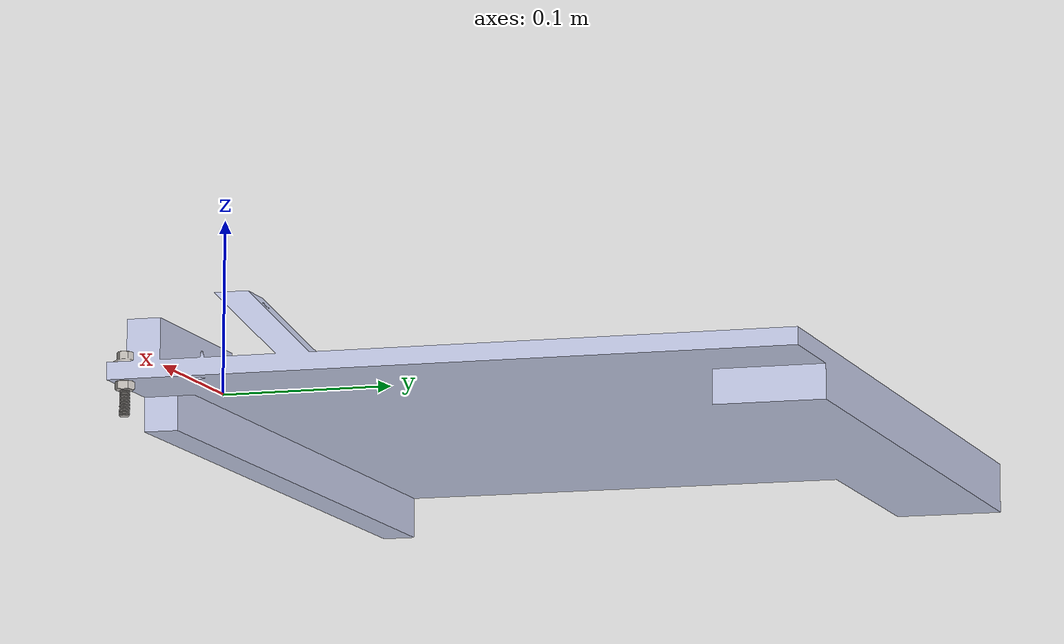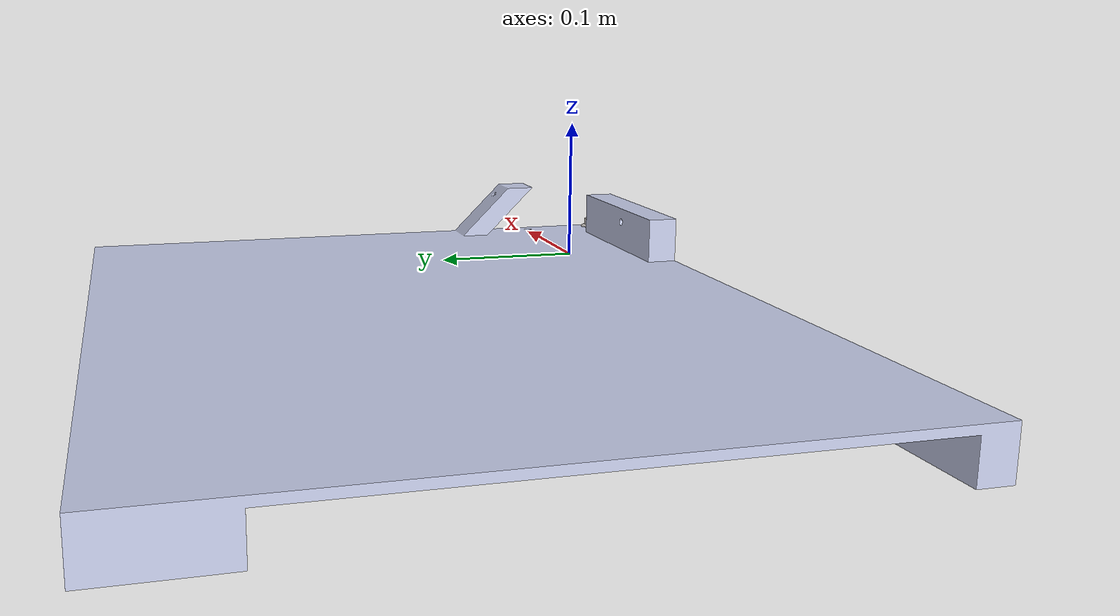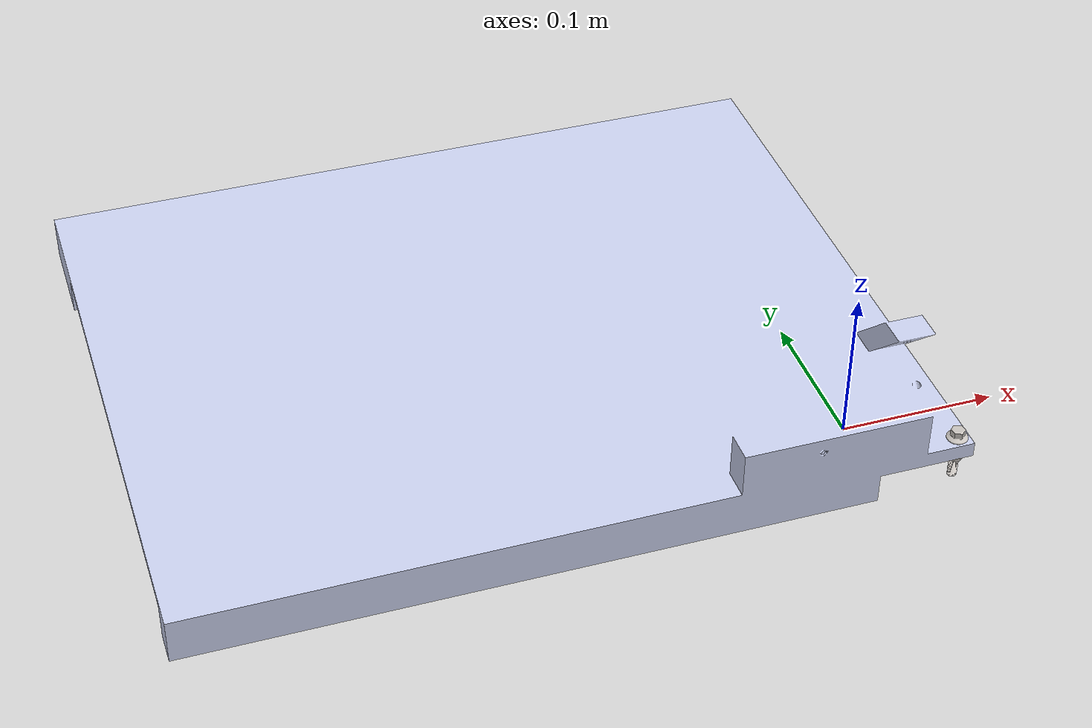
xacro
<?xml version="1.0" encoding="utf-8"?>
<robot name="v_battery">
  <link name="v_battery_base_link"
    xmlns:xacro="http://www.ros.org/wiki/xacro">
    <inertial>
      <origin xyz="-0.17823 0.0014541 -0.18254" rpy="0 0 0" />
      <mass value="2.1452" />
      <inertia ixx="0.04437" ixy="-0.00066651" ixz="-0.0054047" iyy="0.089539" iyz="-0.0010719" izz="0.045613" />
    </inertial>
    <visual>
      <origin xyz="0 0 0" rpy="0 0 0" />
      <geometry>
        <mesh filename="package://battery_pack_describe/meshes/v_battery_base_link.dae" />
      </geometry>
      <material name="">
        <color rgba="0.79216 0.81961 0.93333 1" />
      </material>
    </visual>
    <collision>
      <origin xyz="0 0 0" rpy="0 0 0" />
      <geometry>
        <mesh filename="package://battery_pack_describe/meshes/v_battery_base_link.dae" />
      </geometry>
    </collision>
  </link>

  <gazebo reference="v_battery_base_link">
    <kp>1000000.0</kp>
    <kd>100.0</kd>
    <mu1>50000000000000000000.0</mu1>
    <mu2>50000000000000000000.0</mu2>
    <maxVel>0</maxVel>
    <minDepth>0.001</minDepth>
    <fdir1>1 0 0</fdir1>

  </gazebo>

  <link name="v_battery_bolt_Link">
    <inertial>
      <origin xyz="-0.00224797355412683 -2.42669320749123E-09 1.13997717515746E-09" rpy="0 0 0" />
      <mass value="0.010043058879212" />
      <inertia ixx="8.16036465000949E-08" ixy="-2.67875420699996E-13" ixz="1.25078148224805E-13" iyy="1.22914699774063E-06" iyz="5.9822890763516E-14" izz="1.22914675774153E-06" />
    </inertial>
    <visual>
      <origin xyz="0 0 0" rpy="0 0 0" />
      <geometry>
        <mesh filename="package://battery_pack_describe/meshes/v_battery_bolt_Link_metal.dae" />
      </geometry>
      <material name="">
        <color rgba="0.776470588235294 0.756862745098039 0.737254901960784 1" />
      </material>
    </visual>
    <collision>
      <origin xyz="0 0 0" rpy="0 0 0" />
      <geometry>
        <mesh filename="package://battery_pack_describe/meshes/v_battery_bolt_Link_metal.dae" />
      </geometry>
    </collision>
  </link>

  <!--摩擦力参考链接，我修改了mu的大小。 https://boschresearch.github.io/pcg_gazebo_pkgs/tutorials/parsers/urdf/robots/
https://whtqh.gitbooks.io/gazebo_simu_chs/content/using_a_urdf_model.html  摩擦力和其他参数，定义链接
-->
  <gazebo reference="v_battery_bolt_Link">
    <maxVel>0.01</maxVel>
    <kd>1</kd>
    <maxContacts>20</maxContacts>
    <mu2>5000000000000000</mu2>
    <selfCollide>0</selfCollide>
    <mu1>5000000000000000</mu1>
    <minDepth>0</minDepth>
    <kp>1000000000000.0</kp>
    <material>Gazebo/Grey </material>
  </gazebo>

  <joint name="v_battery_bolt_joint" type="continuous">
    <origin xyz="0.057323 -0.038452 0" rpy="0.39309 1.5708 0" />
    <parent link="v_battery_base_link" />
    <child link="v_battery_bolt_Link" />
    <axis xyz="1 0 0" />
  </joint>
  <link name="v_battery_nut_Link">
    <inertial>
      <origin xyz="-8.23260362659006E-10 1.38777878078145E-17 -0.0026006024331304" rpy="0 0 0" />
      <mass value="0.00265736664598247" />
      <inertia ixx="2.79753045005072E-08" ixy="5.04580173657347E-23" ixz="1.31793951411467E-18" iyy="2.79771327058771E-08" iyz="-4.83267733699208E-14" izz="4.46160415460721E-08" />
    </inertial>
    <visual>
      <origin xyz="0 0 0" rpy="0 0 0" />
      <geometry>
        <mesh filename="package://battery_pack_describe/meshes/v_battery_nut_Link.dae" />
      </geometry>
      <material name="">
        <color rgba="0.776470588235294 0.756862745098039 0.737254901960784 1" />
      </material>
    </visual>
    <collision>
      <origin xyz="0 0 0" rpy="0 0 0" />
      <geometry>
        <mesh filename="package://battery_pack_describe/meshes/v_battery_nut_Link.dae" />
      </geometry>
    </collision>
  </link>

  <joint name="v_battery_nut_joint" type="fixed">
    <origin xyz="0.057323 -0.038452 0" rpy="0 0 2.7485" />
    <parent link="v_battery_base_link" />
    <child link="v_battery_nut_Link" />
    <axis xyz="0 0 -1" />
  </joint>
</robot>
